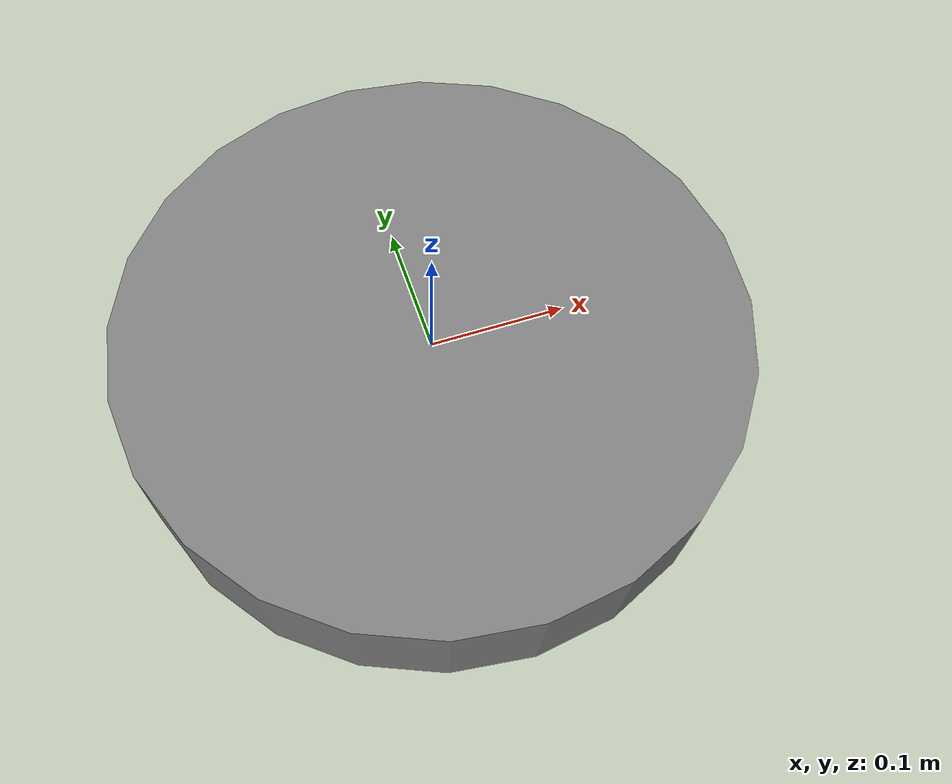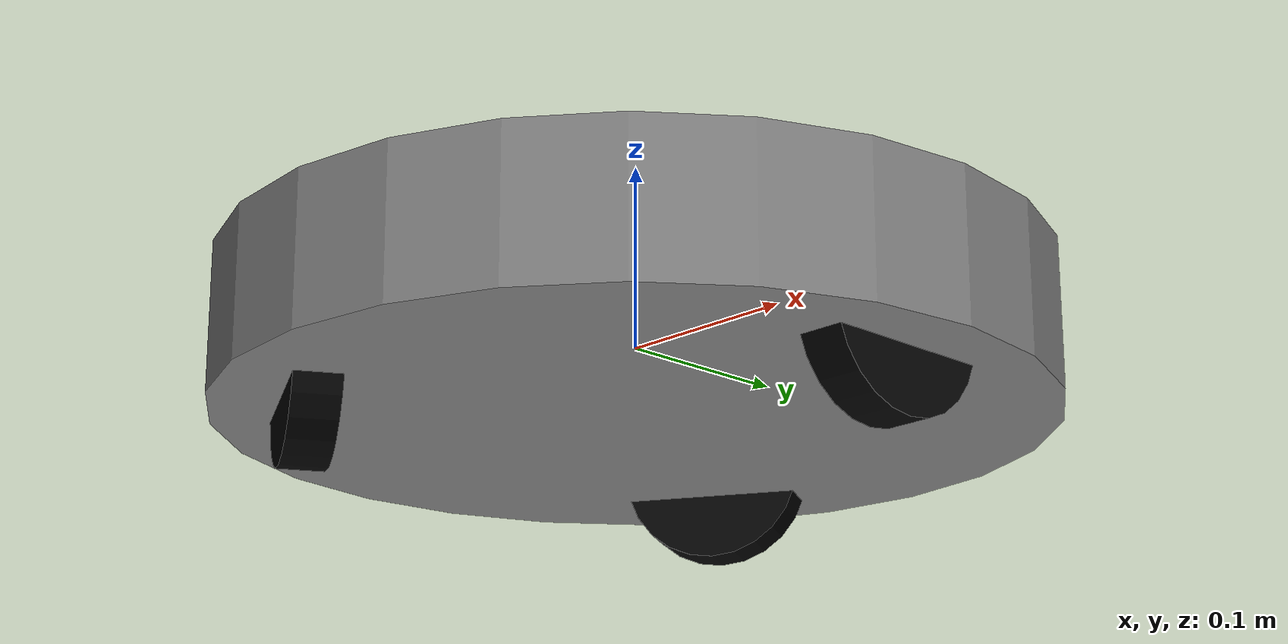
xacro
<?xml version="1.0"?>
<robot name="jonas_omni_base" xmlns:xacro="http://ros.org/wiki/xacro">

  <!-- Jonas robotics project, UTEC - Lima, Peru. -->

  <!-- CONFIGURABLE PARAMETERS   -->

  <!-- Circular base -->
  <xacro:property name="base_radius" value="0.22"/>          <!-- m: base radius -->
  <xacro:property name="base_height" value="0.08"/>          <!-- m: base height -->
  <xacro:property name="base_mass" value="4.0"/>             <!-- kg -->

  <!-- Omni wheels -->
  <xacro:property name="wheel_radius" value="0.05"/>         <!-- m: wheel radius -->
  <xacro:property name="wheel_width" value="0.025"/>         <!-- m: wheel thickness/width -->
  <xacro:property name="wheel_mass" value="0.25"/>           <!-- kg -->

  <!-- Triangular geometry -->
  <xacro:property name="wheel_separation_radius" value="0.17"/>
  <!-- Distance from the base center to each wheel center. -->

  <xacro:property name="wheel_angle_1" value="0.0"/>         <!-- rad -->
  <xacro:property name="wheel_angle_2" value="2.094395102"/> <!-- 120 degrees -->
  <xacro:property name="wheel_angle_3" value="4.188790205"/> <!-- 240 degrees -->

  <!-- Wheel center height relative to the base_link center. -->
  <xacro:property name="wheel_z" value="-0.025"/>

  <!-- Visualization -->
  <xacro:property name="base_color" value="0.5 0.5 0.5 1.0"/>
  <xacro:property name="wheel_color" value="0.02 0.02 0.02 1.0"/>

  <!-- MATERIALS                 -->

  <material name="base_gray">
    <color rgba="${base_color}"/>
  </material>

  <material name="wheel_black">
    <color rgba="${wheel_color}"/>
  </material>

  <!-- SIMPLE INERTIA MODELS     -->

  <!-- Approximate vertical cylinder inertia for the base. -->
  <xacro:macro name="cylinder_inertia_z" params="mass radius length">
    <inertial>
      <origin xyz="0 0 0" rpy="0 0 0"/>
      <mass value="${mass}"/>
      <inertia
        ixx="${(1.0/12.0) * mass * (3.0 * radius * radius + length * length)}"
        ixy="0.0"
        ixz="0.0"
        iyy="${(1.0/12.0) * mass * (3.0 * radius * radius + length * length)}"
        iyz="0.0"
        izz="${0.5 * mass * radius * radius}"/>
    </inertial>
  </xacro:macro>

  <!-- Approximate cylindrical wheel inertia. -->
  <xacro:macro name="wheel_inertia" params="mass radius width">
    <inertial>
      <origin xyz="0 0 0" rpy="0 0 0"/>
      <mass value="${mass}"/>
      <inertia
        ixx="${0.5 * mass * radius * radius}"
        ixy="0.0"
        ixz="0.0"
        iyy="${(1.0/12.0) * mass * (3.0 * radius * radius + width * width)}"
        iyz="0.0"
        izz="${(1.0/12.0) * mass * (3.0 * radius * radius + width * width)}"/>
    </inertial>
  </xacro:macro>

  <!-- MAIN BASE                 -->

  <link name="base_link">
    <visual>
      <origin xyz="0 0 0" rpy="0 0 0"/>
      <geometry>
        <cylinder radius="${base_radius}" length="${base_height}"/>
      </geometry>
      <material name="base_gray"/>
    </visual>

    <collision>
      <origin xyz="0 0 0" rpy="0 0 0"/>
      <geometry>
        <cylinder radius="${base_radius}" length="${base_height}"/>
      </geometry>
    </collision>

    <xacro:cylinder_inertia_z
      mass="${base_mass}"
      radius="${base_radius}"
      length="${base_height}"/>
  </link>

  <!-- Auxiliary link for odometry. -->
  <link name="odom"/>

  <joint name="odom_to_base_link" type="fixed">
    <parent link="odom"/>
    <child link="base_link"/>
    <origin xyz="0 0 0" rpy="0 0 0"/>
  </joint>

  <!-- OMNI WHEEL MACRO          -->

  <xacro:macro name="omni_wheel" params="name angle">

    <link name="${name}_wheel_link">
      <visual>
        <!-- Rotated cylinder so the visual appears as a vertical wheel. -->
        <origin xyz="0 0 0" rpy="0 1.57079632679 0"/>
        <geometry>
          <cylinder radius="${wheel_radius}" length="${wheel_width}"/>
        </geometry>
        <material name="wheel_black"/>
      </visual>

      <collision>
        <origin xyz="0 0 0" rpy="0 1.57079632679 0"/>
        <geometry>
          <cylinder radius="${wheel_radius}" length="${wheel_width}"/>
        </geometry>
      </collision>

      <xacro:wheel_inertia
        mass="${wheel_mass}"
        radius="${wheel_radius}"
        width="${wheel_width}"/>
    </link>

    <joint name="${name}_wheel_joint" type="continuous">
      <parent link="base_link"/>
      <child link="${name}_wheel_link"/>

      <!-- Wheel position in the triangular base configuration. -->
      <origin
        xyz="${wheel_separation_radius * cos(angle)}
             ${wheel_separation_radius * sin(angle)}
             ${wheel_z}"
        rpy="0 0 ${angle}"/>

      <!-- Wheel rotation axis. -->
      <axis xyz="1 0 0"/>

      <dynamics damping="0.01" friction="0.0"/>
    </joint>

  </xacro:macro>

  <!-- THREE OMNI WHEELS         -->

  <xacro:omni_wheel name="front" angle="${wheel_angle_1}"/>
  <xacro:omni_wheel name="left_rear" angle="${wheel_angle_2}"/>
  <xacro:omni_wheel name="right_rear" angle="${wheel_angle_3}"/>

</robot>
